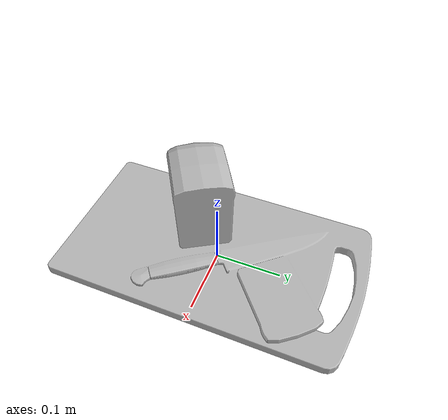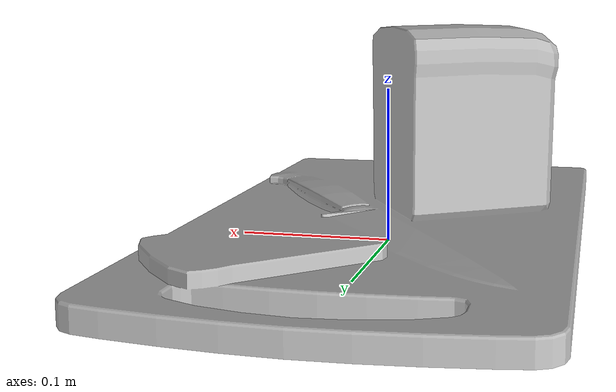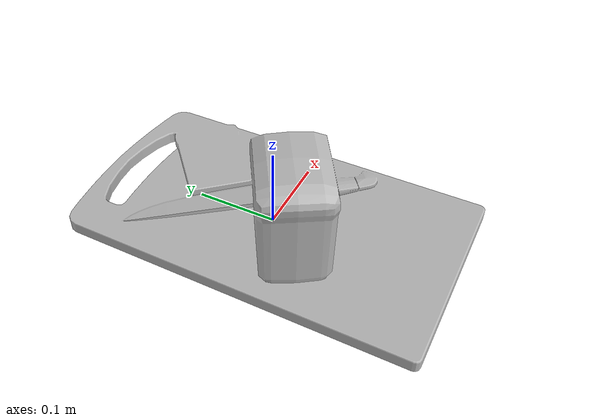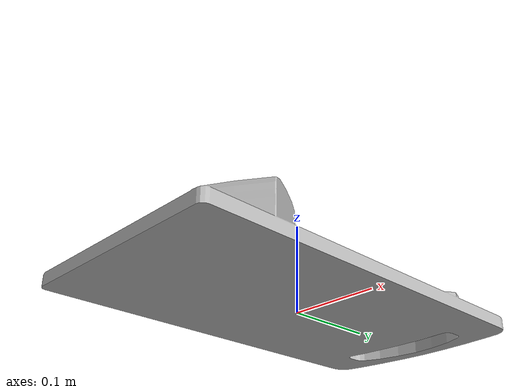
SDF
<?xml version='1.0'?>
<sdf version='1.4'>
  <model name='245'>
    <pose>0 0 0 0 0 0</pose>
    <static>true</static>
    <link name='link'>
      <collision name='collision'>
        <pose>0 0 0 0 0 0</pose>
        <geometry>
          <box>
            <size>0.249482 0.448496 2</size>
          </box>
        </geometry>
      </collision>
      <visual name='visual'>
        <pose>0 0 0 0 0 0</pose>
        <geometry>
          <mesh><uri>model://245/245.dae</uri></mesh>
        </geometry>
      </visual>
    </link>
  </model>
</sdf>
